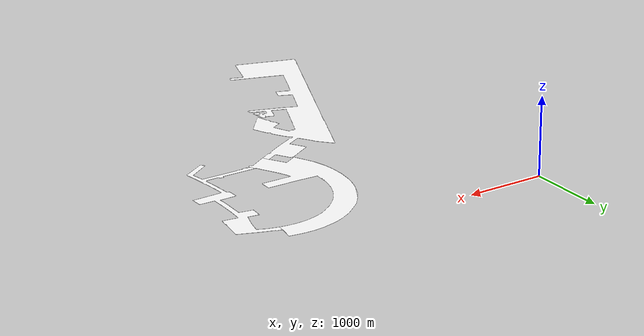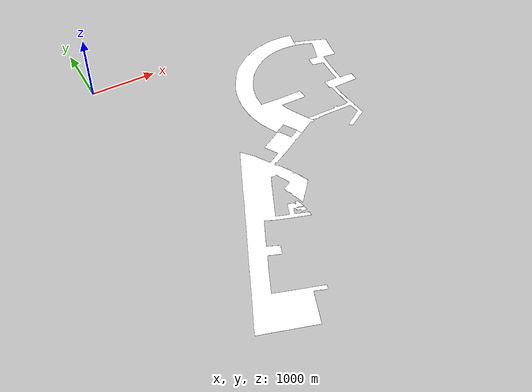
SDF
<sdf version="1.7">
  <world name="world">
    <scene>
      <ambient>0.8 0.8 0.8 1.0</ambient>
      <background>0 0 0</background>
      <grid>false</grid>
    </scene>
    <include>
      <uri>model://sun</uri>
    </include>
    <gui>
      <camera name="gui_camera">
        <pose>1244.1519999999998 -3662.0125 10 0 0.6 1.57</pose>
      </camera>
      <plugin name="toggle_charging" filename="libtoggle_charging.so" />
      <plugin name="toggle_floors" filename="libtoggle_floors.so">
        <floor name="level9" model_name="level9_level9" />
      </plugin>
    </gui>
    <include>
      <name>level9_level9</name>
      <uri>model://level9_level9</uri>
      <pose>0 0 0.0 0 0 0</pose>
    </include>
    <rmf_charger_waypoints name="charger_waypoints" />
  </world>
</sdf>

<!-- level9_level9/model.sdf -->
<sdf version="1.7">
  <model name="level9_level9">
    <static>true</static>
    <link name="floor_1">
      <visual name="visual">
        <geometry>
          <mesh>
            <uri>model://level9_level9/meshes/floor_1.obj</uri>
          </mesh>
        </geometry>
        <material>
          <diffuse>1.0 1.0 1.0</diffuse>
          <specular>0.1 0.1 0.1</specular>
          <pbr>
            <metal>
              <metalness>0.0</metalness>
              <albedo_map>model://level9_level9/meshes/blue_linoleum.png</albedo_map>
            </metal>
          </pbr>
          <script>
            <uri>model://level9_level9/meshes/</uri>
            <name>floor_1_Diffuse</name>
          </script>
        </material>
      </visual>
      <collision name="collision">
        <geometry>
          <mesh>
            <uri>model://level9_level9/meshes/floor_1.obj</uri>
          </mesh>
        </geometry>
        <surface>
          <contact>
            <collide_bitmask>0x01</collide_bitmask>
          </contact>
        </surface>
      </collision>
    </link>
    <link name="floor_2">
      <visual name="visual">
        <geometry>
          <mesh>
            <uri>model://level9_level9/meshes/floor_2.obj</uri>
          </mesh>
        </geometry>
        <material>
          <diffuse>1.0 1.0 1.0</diffuse>
          <specular>0.1 0.1 0.1</specular>
          <pbr>
            <metal>
              <metalness>0.0</metalness>
              <albedo_map>model://level9_level9/meshes/blue_linoleum.png</albedo_map>
            </metal>
          </pbr>
          <script>
            <uri>model://level9_level9/meshes/</uri>
            <name>floor_2_Diffuse</name>
          </script>
        </material>
      </visual>
      <collision name="collision">
        <geometry>
          <mesh>
            <uri>model://level9_level9/meshes/floor_2.obj</uri>
          </mesh>
        </geometry>
        <surface>
          <contact>
            <collide_bitmask>0x01</collide_bitmask>
          </contact>
        </surface>
      </collision>
    </link>
    <link name="floor_3">
      <visual name="visual">
        <geometry>
          <mesh>
            <uri>model://level9_level9/meshes/floor_3.obj</uri>
          </mesh>
        </geometry>
        <material>
          <diffuse>1.0 1.0 1.0</diffuse>
          <specular>0.1 0.1 0.1</specular>
          <pbr>
            <metal>
              <metalness>0.0</metalness>
              <albedo_map>model://level9_level9/meshes/blue_linoleum.png</albedo_map>
            </metal>
          </pbr>
          <script>
            <uri>model://level9_level9/meshes/</uri>
            <name>floor_3_Diffuse</name>
          </script>
        </material>
      </visual>
      <collision name="collision">
        <geometry>
          <mesh>
            <uri>model://level9_level9/meshes/floor_3.obj</uri>
          </mesh>
        </geometry>
        <surface>
          <contact>
            <collide_bitmask>0x01</collide_bitmask>
          </contact>
        </surface>
      </collision>
    </link>
    <link name="floor_4">
      <visual name="visual">
        <geometry>
          <mesh>
            <uri>model://level9_level9/meshes/floor_4.obj</uri>
          </mesh>
        </geometry>
        <material>
          <diffuse>1.0 1.0 1.0</diffuse>
          <specular>0.1 0.1 0.1</specular>
          <pbr>
            <metal>
              <metalness>0.0</metalness>
              <albedo_map>model://level9_level9/meshes/blue_linoleum.png</albedo_map>
            </metal>
          </pbr>
          <script>
            <uri>model://level9_level9/meshes/</uri>
            <name>floor_4_Diffuse</name>
          </script>
        </material>
      </visual>
      <collision name="collision">
        <geometry>
          <mesh>
            <uri>model://level9_level9/meshes/floor_4.obj</uri>
          </mesh>
        </geometry>
        <surface>
          <contact>
            <collide_bitmask>0x01</collide_bitmask>
          </contact>
        </surface>
      </collision>
    </link>
    <link name="wall_1">
      <visual name="wall_1">
        <geometry>
          <mesh>
            <uri>model://level9_level9/meshes/wall_1.obj</uri>
          </mesh>
        </geometry>
        <material>
          <diffuse>1.0 1.0 1.0</diffuse>
          <specular>0.1 0.1 0.1</specular>
          <pbr>
            <metal>
              <metalness>0.0</metalness>
              <albedo_map>model://level9_level9/meshes/default.png</albedo_map>
            </metal>
          </pbr>
          <script>
            <uri>model://level9_level9/meshes/</uri>
            <name>wall_1_Diffuse</name>
          </script>
        </material>
      </visual>
      <collision name="collision">
        <geometry>
          <mesh>
            <uri>model://level9_level9/meshes/wall_1.obj</uri>
          </mesh>
        </geometry>
        <surface>
          <contact>
            <collide_bitmask>0x01</collide_bitmask>
          </contact>
        </surface>
      </collision>
      <pose>131.8095783551268 -5174.077707075454 0 0 0 0</pose>
    </link>
  </model>
</sdf>
